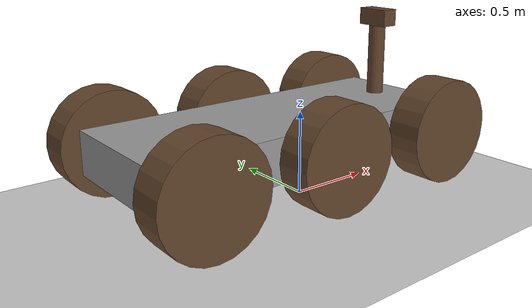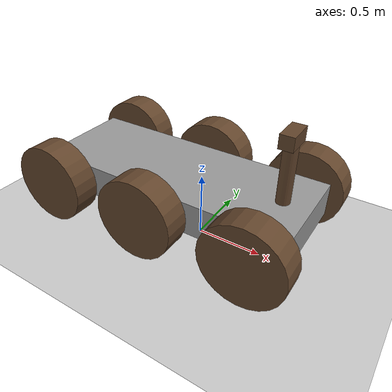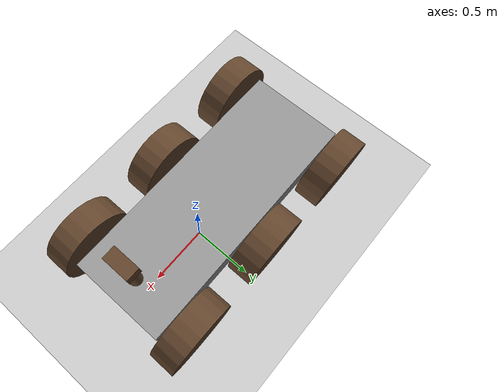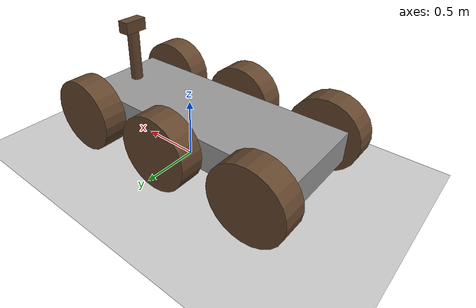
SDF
<sdf version="1.7">
  <world name="my_world">

    <gui fullscreen="0">  <!-- Ekranda nelerin gözükeçeğini ayarlar -->

      <!-- 3D scene -->
      <plugin filename="MinimalScene" name="3D View">
        <ignition-gui>
          <title>3D View</title>
          <property type="bool" key="showTitleBar">false</property>
          <property type="string" key="state">docked</property>
        </ignition-gui>

        <engine>ogre2</engine>
        <scene>scene</scene>
        <ambient_light>0.4 0.4 0.4</ambient_light>
        <background_color>0.8 0.8 0.8</background_color>
        <camera_pose>-6 0 6 0 0.5 0</camera_pose>
      </plugin>

      <!-- Plugins that add functionality to the scene -->
      <plugin filename="EntityContextMenuPlugin" name="Entity context menu">
        <ignition-gui>
          <property key="state" type="string">floating</property>
          <property key="width" type="double">5</property>
          <property key="height" type="double">5</property>
          <property key="showTitleBar" type="bool">false</property>
        </ignition-gui>
      </plugin>
      <plugin filename="GzSceneManager" name="Scene Manager">
        <ignition-gui>
          <property key="resizable" type="bool">false</property>
          <property key="width" type="double">5</property>
          <property key="height" type="double">5</property>
          <property key="state" type="string">floating</property>
          <property key="showTitleBar" type="bool">false</property>
        </ignition-gui>
      </plugin>
      <plugin filename="InteractiveViewControl" name="Interactive view control">
        <ignition-gui>
          <property key="resizable" type="bool">false</property>
          <property key="width" type="double">5</property>
          <property key="height" type="double">5</property>
          <property key="state" type="string">floating</property>
          <property key="showTitleBar" type="bool">false</property>
        </ignition-gui>
      </plugin>
      <plugin filename="CameraTracking" name="Camera Tracking">
        <ignition-gui>
          <property key="resizable" type="bool">false</property>
          <property key="width" type="double">5</property>
          <property key="height" type="double">5</property>
          <property key="state" type="string">floating</property>
          <property key="showTitleBar" type="bool">false</property>
        </ignition-gui>
      </plugin>
      <!-- World control -->
      <plugin filename="WorldControl" name="World control">
        <ignition-gui>
          <title>World control</title>
          <property type="bool" key="showTitleBar">false</property>
          <property type="bool" key="resizable">false</property>
          <property type="double" key="height">72</property>
          <property type="double" key="width">121</property>
          <property type="double" key="z">1</property>

          <property type="string" key="state">floating</property>
          <anchors target="3D View">
            <line own="left" target="left"/>
            <line own="bottom" target="bottom"/>
          </anchors>
        </ignition-gui>

        <play_pause>true</play_pause>
        <step>true</step>
        <start_paused>true</start_paused>
        <use_event>true</use_event>

      </plugin>

      <!-- World statistics -->
      <plugin filename="WorldStats" name="World stats">
        <ignition-gui>
          <title>World stats</title>
          <property type="bool" key="showTitleBar">false</property>
          <property type="bool" key="resizable">false</property>
          <property type="double" key="height">110</property>
          <property type="double" key="width">290</property>
          <property type="double" key="z">1</property>

          <property type="string" key="state">floating</property>
          <anchors target="3D View">
            <line own="right" target="right"/>
            <line own="bottom" target="bottom"/>
          </anchors>
        </ignition-gui>

        <sim_time>true</sim_time>
        <real_time>true</real_time>
        <real_time_factor>true</real_time_factor>
        <iterations>true</iterations>
      </plugin>

      <plugin filename="ImageDisplay" name="Image Display">
        <ignition-gui>
          <property key="state" type="string">docked</property>  <!-- docked yerine floating -->
        </ignition-gui>
      </plugin>

      <!-- Inspector -->

      <!-- Entity tree -->
    </gui>

  <plugin
    filename="ignition-gazebo-physics-system"
    name="ignition::gazebo::systems::Physics">
  </plugin>
  <plugin
    filename="ignition-gazebo-sensors-system"
    name="ignition::gazebo::systems::Sensors">
    <render_engine>ogre</render_engine>
  </plugin>
  <plugin
    filename="ignition-gazebo-user-commands-system"
    name="ignition::gazebo::systems::UserCommands">
  </plugin>
  <plugin
    filename="ignition-gazebo-scene-broadcaster-system"
    name="ignition::gazebo::systems::SceneBroadcaster">
  </plugin>

    <include>
      <uri> https://fuel.gazebosim.org/1.0/OpenRobotics/models/Sun </uri>
    </include>

    <include>
      <uri>../models/ground</uri>
      <!--
        Eğer model yolu IGN_GAZEBO_RESOURCE_PATH değişkenine bildirildi ise sadece ground
        yeterlidir.
       -->
    </include>

    <include>
      <pose>0 0 0.5 0 0 0</pose>
      <uri>../models/vehicle</uri>
    </include>

  </world>
</sdf>

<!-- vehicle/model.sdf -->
<sdf version='1.7'>
  <model name='land_vehicle'>
    <link name='vehicle_body_link'>
      <inertial>
        <mass>1</mass>
        <inertia>
          <ixx>0.166667</ixx>
          <ixy>0</ixy>
          <ixz>0</ixz>
          <iyy>0.166667</iyy>
          <iyz>0</iyz>
          <izz>0.166667</izz>
        </inertia>
        <pose>0 0 0 0 -0 0</pose>
      </inertial>
      <pose>-0.177778 0 -0.1 0 -0 0</pose>
      <gravity>1</gravity>
      <self_collide>0</self_collide>
      <kinematic>0</kinematic>
      <enable_wind>0</enable_wind>
      <visual name='visual'>
        <pose>0 0 0 0 -0 0</pose>
        <geometry>
          <box>
            <size>2 0.75 0.25</size>
          </box>
        </geometry>
        <material>
          <lighting>1</lighting>
          <script>
            <uri>file://media/materials/scripts/gazebo.material</uri>
            <name>Gazebo/Grey</name>
          </script>
          <shader type='pixel'>
            <normal_map>__default__</normal_map>
          </shader>
          <ambient>0 0 0 1</ambient>
          <diffuse>0 0 0 1</diffuse>
          <specular>0 0 0 1</specular>
          <emissive>0 0 0 1</emissive>
        </material>
        <transparency>0</transparency>
        <cast_shadows>1</cast_shadows>
      </visual>
      <collision name='collision'>
        <laser_retro>0</laser_retro>
        <max_contacts>10</max_contacts>
        <pose>0 0 0 0 -0 0</pose>
        <geometry>
          <box>
            <size>2 0.75 0.25</size>
          </box>
        </geometry>
        <surface>
          <friction>
            <ode>
              <mu>1</mu>
              <mu2>1</mu2>
              <fdir1>0 0 0</fdir1>
              <slip1>0</slip1>
              <slip2>0</slip2>
            </ode>
            <torsional>
              <coefficient>1</coefficient>
              <patch_radius>0</patch_radius>
              <surface_radius>0</surface_radius>
              <use_patch_radius>1</use_patch_radius>
              <ode>
                <slip>0</slip>
              </ode>
            </torsional>
          </friction>
          <bounce>
            <restitution_coefficient>0</restitution_coefficient>
            <threshold>1e+06</threshold>
          </bounce>
          <contact>
            <collide_without_contact>0</collide_without_contact>
            <collide_without_contact_bitmask>1</collide_without_contact_bitmask>
            <collide_bitmask>1</collide_bitmask>
            <ode>
              <soft_cfm>0</soft_cfm>
              <soft_erp>0.2</soft_erp>
              <kp>1e+13</kp>
              <kd>1</kd>
              <max_vel>0.01</max_vel>
              <min_depth>0</min_depth>
            </ode>
            <bullet>
              <split_impulse>1</split_impulse>
              <split_impulse_penetration_threshold>-0.01</split_impulse_penetration_threshold>
              <soft_cfm>0</soft_cfm>
              <soft_erp>0.2</soft_erp>
              <kp>1e+13</kp>
              <kd>1</kd>
            </bullet>
          </contact>
        </surface>
      </collision>
    </link>
    <link name='BR_wheel_link'>
      <inertial>
        <mass>1</mass>
        <inertia>
          <ixx>0.145833</ixx>
          <ixy>0</ixy>
          <ixz>0</ixz>
          <iyy>0.145833</iyy>
          <iyz>0</iyz>
          <izz>0.125</izz>
        </inertia>
        <pose>0 0 0 0 -0 0</pose>
      </inertial>
      <pose>-0.977778 -0.5 -0.1 0 -0 0</pose>
      <gravity>1</gravity>
      <self_collide>0</self_collide>
      <kinematic>0</kinematic>
      <enable_wind>0</enable_wind>
      <visual name='visual'>
        <pose>0 0 0 1.5707 -0 0</pose>
        <geometry>
          <cylinder>
            <radius>0.3</radius>
            <length>0.2</length>
          </cylinder>
        </geometry>
        <material>
          <lighting>1</lighting>
          <script>
            <uri>file://media/materials/scripts/gazebo.material</uri>
            <name>Gazebo/Grey</name>
          </script>
          <shader type='pixel'>
            <normal_map>__default__</normal_map>
          </shader>
          <ambient>0.388 0.271 0.173 1</ambient>
          <diffuse>0.388 0.271 0.173 1</diffuse>
          <specular>0 0 0 1</specular>
          <emissive>0 0 0 1</emissive>
        </material>
        <transparency>0</transparency>
        <cast_shadows>1</cast_shadows>
      </visual>
      <collision name='collision'>
        <laser_retro>0</laser_retro>
        <max_contacts>10</max_contacts>
        <pose>0 0 0 1.5707 -0 0</pose>
        <geometry>
          <cylinder>
            <radius>0.3</radius>
            <length>0.2</length>
          </cylinder>
        </geometry>
        <surface>
          <friction>
            <ode>
              <mu>0.1</mu>
              <mu2>0.1</mu2>
              <fdir1>0 0 0</fdir1>
              <slip1>0</slip1>
              <slip2>0</slip2>
            </ode>
            <torsional>
              <coefficient>1</coefficient>
              <patch_radius>0</patch_radius>
              <surface_radius>0</surface_radius>
              <use_patch_radius>1</use_patch_radius>
              <ode>
                <slip>0</slip>
              </ode>
            </torsional>
          </friction>
          <bounce>
            <restitution_coefficient>0</restitution_coefficient>
            <threshold>1e+06</threshold>
          </bounce>
          <contact>
            <collide_without_contact>0</collide_without_contact>
            <collide_without_contact_bitmask>1</collide_without_contact_bitmask>
            <collide_bitmask>1</collide_bitmask>
            <ode>
              <soft_cfm>0</soft_cfm>
              <soft_erp>0.2</soft_erp>
              <kp>1e+13</kp>
              <kd>1</kd>
              <max_vel>0.01</max_vel>
              <min_depth>0</min_depth>
            </ode>
            <bullet>
              <split_impulse>1</split_impulse>
              <split_impulse_penetration_threshold>-0.01</split_impulse_penetration_threshold>
              <soft_cfm>0</soft_cfm>
              <soft_erp>0.2</soft_erp>
              <kp>1e+13</kp>
              <kd>1</kd>
            </bullet>
          </contact>
        </surface>
      </collision>
    </link>
    <link name='FL_wheel_link'>
      <inertial>
        <mass>1</mass>
        <inertia>
          <ixx>0.145833</ixx>
          <ixy>0</ixy>
          <ixz>0</ixz>
          <iyy>0.145833</iyy>
          <iyz>0</iyz>
          <izz>0.125</izz>
        </inertia>
        <pose>0 0 0 0 -0 0</pose>
      </inertial>
      <pose>0.622222 0.5 -0.1 0 -0 0</pose>
      <gravity>1</gravity>
      <self_collide>0</self_collide>
      <kinematic>0</kinematic>
      <enable_wind>0</enable_wind>
      <visual name='visual'>
        <pose>0 0 0 1.5707 -0 0</pose>
        <geometry>
          <cylinder>
            <radius>0.3</radius>
            <length>0.2</length>
          </cylinder>
        </geometry>
        <material>
          <lighting>1</lighting>
          <script>
            <uri>file://media/materials/scripts/gazebo.material</uri>
            <name>Gazebo/Grey</name>
          </script>
          <shader type='pixel'>
            <normal_map>__default__</normal_map>
          </shader>
          <ambient>0.388 0.271 0.173 1</ambient>
          <diffuse>0.388 0.271 0.173 1</diffuse>
          <specular>0 0 0 1</specular>
          <emissive>0 0 0 1</emissive>
        </material>
        <transparency>0</transparency>
        <cast_shadows>1</cast_shadows>
      </visual>
      <collision name='collision'>
        <laser_retro>0</laser_retro>
        <max_contacts>10</max_contacts>
        <pose>0 0 0 1.5707 -0 0</pose>
        <geometry>
          <cylinder>
            <radius>0.3</radius>
            <length>0.2</length>
          </cylinder>
        </geometry>
        <surface>
          <friction>
            <ode>
              <mu>0.1</mu>
              <mu2>0.1</mu2>
              <fdir1>0 0 0</fdir1>
              <slip1>0</slip1>
              <slip2>0</slip2>
            </ode>
            <torsional>
              <coefficient>1</coefficient>
              <patch_radius>0</patch_radius>
              <surface_radius>0</surface_radius>
              <use_patch_radius>1</use_patch_radius>
              <ode>
                <slip>0</slip>
              </ode>
            </torsional>
          </friction>
          <bounce>
            <restitution_coefficient>0</restitution_coefficient>
            <threshold>1e+06</threshold>
          </bounce>
          <contact>
            <collide_without_contact>0</collide_without_contact>
            <collide_without_contact_bitmask>1</collide_without_contact_bitmask>
            <collide_bitmask>1</collide_bitmask>
            <ode>
              <soft_cfm>0</soft_cfm>
              <soft_erp>0.2</soft_erp>
              <kp>1e+13</kp>
              <kd>1</kd>
              <max_vel>0.01</max_vel>
              <min_depth>0</min_depth>
            </ode>
            <bullet>
              <split_impulse>1</split_impulse>
              <split_impulse_penetration_threshold>-0.01</split_impulse_penetration_threshold>
              <soft_cfm>0</soft_cfm>
              <soft_erp>0.2</soft_erp>
              <kp>1e+13</kp>
              <kd>1</kd>
            </bullet>
          </contact>
        </surface>
      </collision>
    </link>
    <link name='CL_wheel_link'>
      <inertial>
        <mass>1</mass>
        <inertia>
          <ixx>0.145833</ixx>
          <ixy>0</ixy>
          <ixz>0</ixz>
          <iyy>0.145833</iyy>
          <iyz>0</iyz>
          <izz>0.125</izz>
        </inertia>
        <pose>0 0 0 0 -0 0</pose>
      </inertial>
      <pose>-0.177778 0.5 -0.1 0 -0 0</pose>
      <gravity>1</gravity>
      <self_collide>0</self_collide>
      <kinematic>0</kinematic>
      <enable_wind>0</enable_wind>
      <visual name='visual'>
        <pose>0 0 0 1.5707 -0 0</pose>
        <geometry>
          <cylinder>
            <radius>0.3</radius>
            <length>0.2</length>
          </cylinder>
        </geometry>
        <material>
          <lighting>1</lighting>
          <script>
            <uri>file://media/materials/scripts/gazebo.material</uri>
            <name>Gazebo/Grey</name>
          </script>
          <shader type='pixel'>
            <normal_map>__default__</normal_map>
          </shader>
          <ambient>0.388 0.271 0.173 1</ambient>
          <diffuse>0.388 0.271 0.173 1</diffuse>
          <specular>0 0 0 1</specular>
          <emissive>0 0 0 1</emissive>
        </material>
        <transparency>0</transparency>
        <cast_shadows>1</cast_shadows>
      </visual>
      <collision name='collision'>
        <laser_retro>0</laser_retro>
        <max_contacts>10</max_contacts>
        <pose>0 0 0 1.5707 -0 0</pose>
        <geometry>
          <cylinder>
            <radius>0.3</radius>
            <length>0.2</length>
          </cylinder>
        </geometry>
        <surface>
          <friction>
            <ode>
              <mu>0.1</mu>
              <mu2>0.1</mu2>
              <fdir1>0 0 0</fdir1>
              <slip1>0</slip1>
              <slip2>0</slip2>
            </ode>
            <torsional>
              <coefficient>1</coefficient>
              <patch_radius>0</patch_radius>
              <surface_radius>0</surface_radius>
              <use_patch_radius>1</use_patch_radius>
              <ode>
                <slip>0</slip>
              </ode>
            </torsional>
          </friction>
          <bounce>
            <restitution_coefficient>0</restitution_coefficient>
            <threshold>1e+06</threshold>
          </bounce>
          <contact>
            <collide_without_contact>0</collide_without_contact>
            <collide_without_contact_bitmask>1</collide_without_contact_bitmask>
            <collide_bitmask>1</collide_bitmask>
            <ode>
              <soft_cfm>0</soft_cfm>
              <soft_erp>0.2</soft_erp>
              <kp>1e+13</kp>
              <kd>1</kd>
              <max_vel>0.01</max_vel>
              <min_depth>0</min_depth>
            </ode>
            <bullet>
              <split_impulse>1</split_impulse>
              <split_impulse_penetration_threshold>-0.01</split_impulse_penetration_threshold>
              <soft_cfm>0</soft_cfm>
              <soft_erp>0.2</soft_erp>
              <kp>1e+13</kp>
              <kd>1</kd>
            </bullet>
          </contact>
        </surface>
      </collision>
    </link>
    <link name='CR_wheel_link'>
      <inertial>
        <mass>1</mass>
        <inertia>
          <ixx>0.145833</ixx>
          <ixy>0</ixy>
          <ixz>0</ixz>
          <iyy>0.145833</iyy>
          <iyz>0</iyz>
          <izz>0.125</izz>
        </inertia>
        <pose>0 0 0 0 -0 0</pose>
      </inertial>
      <pose>-0.177778 -0.5 -0.1 0 -0 0</pose>
      <gravity>1</gravity>
      <self_collide>0</self_collide>
      <kinematic>0</kinematic>
      <enable_wind>0</enable_wind>
      <visual name='visual'>
        <pose>0 0 0 1.5707 -0 0</pose>
        <geometry>
          <cylinder>
            <radius>0.3</radius>
            <length>0.2</length>
          </cylinder>
        </geometry>
        <material>
          <lighting>1</lighting>
          <script>
            <uri>file://media/materials/scripts/gazebo.material</uri>
            <name>Gazebo/Grey</name>
          </script>
          <shader type='pixel'>
            <normal_map>__default__</normal_map>
          </shader>
          <ambient>0.388 0.271 0.173 1</ambient>
          <diffuse>0.388 0.271 0.173 1</diffuse>
          <specular>0 0 0 1</specular>
          <emissive>0 0 0 1</emissive>
        </material>
        <transparency>0</transparency>
        <cast_shadows>1</cast_shadows>
      </visual>
      <collision name='collision'>
        <laser_retro>0</laser_retro>
        <max_contacts>10</max_contacts>
        <pose>0 0 0 1.5707 -0 0</pose>
        <geometry>
          <cylinder>
            <radius>0.3</radius>
            <length>0.2</length>
          </cylinder>
        </geometry>
        <surface>
          <friction>
            <ode>
              <mu>0.1</mu>
              <mu2>0.1</mu2>
              <fdir1>0 0 0</fdir1>
              <slip1>0</slip1>
              <slip2>0</slip2>
            </ode>
            <torsional>
              <coefficient>1</coefficient>
              <patch_radius>0</patch_radius>
              <surface_radius>0</surface_radius>
              <use_patch_radius>1</use_patch_radius>
              <ode>
                <slip>0</slip>
              </ode>
            </torsional>
          </friction>
          <bounce>
            <restitution_coefficient>0</restitution_coefficient>
            <threshold>1e+06</threshold>
          </bounce>
          <contact>
            <collide_without_contact>0</collide_without_contact>
            <collide_without_contact_bitmask>1</collide_without_contact_bitmask>
            <collide_bitmask>1</collide_bitmask>
            <ode>
              <soft_cfm>0</soft_cfm>
              <soft_erp>0.2</soft_erp>
              <kp>1e+13</kp>
              <kd>1</kd>
              <max_vel>0.01</max_vel>
              <min_depth>0</min_depth>
            </ode>
            <bullet>
              <split_impulse>1</split_impulse>
              <split_impulse_penetration_threshold>-0.01</split_impulse_penetration_threshold>
              <soft_cfm>0</soft_cfm>
              <soft_erp>0.2</soft_erp>
              <kp>1e+13</kp>
              <kd>1</kd>
            </bullet>
          </contact>
        </surface>
      </collision>
    </link>
    <link name='BL_wheel_link'>
      <inertial>
        <mass>1</mass>
        <inertia>
          <ixx>0.145833</ixx>
          <ixy>0</ixy>
          <ixz>0</ixz>
          <iyy>0.145833</iyy>
          <iyz>0</iyz>
          <izz>0.125</izz>
        </inertia>
        <pose>0 0 0 0 -0 0</pose>
      </inertial>
      <pose>-0.977778 0.5 -0.1 0 -0 0</pose>
      <gravity>1</gravity>
      <self_collide>0</self_collide>
      <kinematic>0</kinematic>
      <enable_wind>0</enable_wind>
      <visual name='visual'>
        <pose>0 0 0 1.5707 -0 0</pose>
        <geometry>
          <cylinder>
            <radius>0.3</radius>
            <length>0.2</length>
          </cylinder>
        </geometry>
        <material>
          <lighting>1</lighting>
          <script>
            <uri>file://media/materials/scripts/gazebo.material</uri>
            <name>Gazebo/Grey</name>
          </script>
          <shader type='pixel'>
            <normal_map>__default__</normal_map>
          </shader>
          <ambient>0.388 0.271 0.173 1</ambient>
          <diffuse>0.388 0.271 0.173 1</diffuse>
          <specular>0 0 0 1</specular>
          <emissive>0 0 0 1</emissive>
        </material>
        <transparency>0</transparency>
        <cast_shadows>1</cast_shadows>
      </visual>
      <collision name='collision'>
        <laser_retro>0</laser_retro>
        <max_contacts>10</max_contacts>
        <pose>0 0 0 1.5707 -0 0</pose>
        <geometry>
          <cylinder>
            <radius>0.3</radius>
            <length>0.2</length>
          </cylinder>
        </geometry>
        <surface>
          <friction>
            <ode>
              <mu>0.1</mu>
              <mu2>0.1</mu2>
              <fdir1>0 0 0</fdir1>
              <slip1>0</slip1>
              <slip2>0</slip2>
            </ode>
            <torsional>
              <coefficient>1</coefficient>
              <patch_radius>0</patch_radius>
              <surface_radius>0</surface_radius>
              <use_patch_radius>1</use_patch_radius>
              <ode>
                <slip>0</slip>
              </ode>
            </torsional>
          </friction>
          <bounce>
            <restitution_coefficient>0</restitution_coefficient>
            <threshold>1e+06</threshold>
          </bounce>
          <contact>
            <collide_without_contact>0</collide_without_contact>
            <collide_without_contact_bitmask>1</collide_without_contact_bitmask>
            <collide_bitmask>1</collide_bitmask>
            <ode>
              <soft_cfm>0</soft_cfm>
              <soft_erp>0.2</soft_erp>
              <kp>1e+13</kp>
              <kd>1</kd>
              <max_vel>0.01</max_vel>
              <min_depth>0</min_depth>
            </ode>
            <bullet>
              <split_impulse>1</split_impulse>
              <split_impulse_penetration_threshold>-0.01</split_impulse_penetration_threshold>
              <soft_cfm>0</soft_cfm>
              <soft_erp>0.2</soft_erp>
              <kp>1e+13</kp>
              <kd>1</kd>
            </bullet>
          </contact>
        </surface>
      </collision>
    </link>
    <link name='FR_wheel_link'>
      <inertial>
        <mass>1</mass>
        <inertia>
          <ixx>0.145833</ixx>
          <ixy>0</ixy>
          <ixz>0</ixz>
          <iyy>0.145833</iyy>
          <iyz>0</iyz>
          <izz>0.125</izz>
        </inertia>
        <pose>0 0 0 0 -0 0</pose>
      </inertial>
      <pose>0.622222 -0.5 -0.1 0 -0 0</pose>
      <gravity>1</gravity>
      <self_collide>0</self_collide>
      <kinematic>0</kinematic>
      <enable_wind>0</enable_wind>
      <visual name='visual'>
        <pose>0 0 0 1.5707 -0 0</pose>
        <geometry>
          <cylinder>
            <radius>0.3</radius>
            <length>0.2</length>
          </cylinder>
        </geometry>
        <material>
          <lighting>1</lighting>
          <script>
            <uri>file://media/materials/scripts/gazebo.material</uri>
            <name>Gazebo/Grey</name>
          </script>
          <shader type='pixel'>
            <normal_map>__default__</normal_map>
          </shader>
          <ambient>0.388 0.271 0.173 1</ambient>
          <diffuse>0.388 0.271 0.173 1</diffuse>
          <specular>0 0 0 1</specular>
          <emissive>0 0 0 1</emissive>
        </material>
        <transparency>0</transparency>
        <cast_shadows>1</cast_shadows>
      </visual>
      <collision name='collision'>
        <laser_retro>0</laser_retro>
        <max_contacts>10</max_contacts>
        <pose>0 0 0 1.5707 -0 0</pose>
        <geometry>
          <cylinder>
            <radius>0.3</radius>
            <length>0.2</length>
          </cylinder>
        </geometry>
        <surface>
          <friction>
            <ode>
              <mu>0.1</mu>
              <mu2>0.1</mu2>
              <fdir1>0 0 0</fdir1>
              <slip1>0</slip1>
              <slip2>0</slip2>
            </ode>
            <torsional>
              <coefficient>1</coefficient>
              <patch_radius>0</patch_radius>
              <surface_radius>0</surface_radius>
              <use_patch_radius>1</use_patch_radius>
              <ode>
                <slip>0</slip>
              </ode>
            </torsional>
          </friction>
          <bounce>
            <restitution_coefficient>0</restitution_coefficient>
            <threshold>1e+06</threshold>
          </bounce>
          <contact>
            <collide_without_contact>0</collide_without_contact>
            <collide_without_contact_bitmask>1</collide_without_contact_bitmask>
            <collide_bitmask>1</collide_bitmask>
            <ode>
              <soft_cfm>0</soft_cfm>
              <soft_erp>0.2</soft_erp>
              <kp>1e+13</kp>
              <kd>1</kd>
              <max_vel>0.01</max_vel>
              <min_depth>0</min_depth>
            </ode>
            <bullet>
              <split_impulse>1</split_impulse>
              <split_impulse_penetration_threshold>-0.01</split_impulse_penetration_threshold>
              <soft_cfm>0</soft_cfm>
              <soft_erp>0.2</soft_erp>
              <kp>1e+13</kp>
              <kd>1</kd>
            </bullet>
          </contact>
        </surface>
      </collision>
    </link>
    <link name='camera_holder_link'>
      <inertial>
        <mass>1</mass>
        <inertia>
          <ixx>0.145833</ixx>
          <ixy>0</ixy>
          <ixz>0</ixz>
          <iyy>0.145833</iyy>
          <iyz>0</iyz>
          <izz>0.125</izz>
        </inertia>
        <pose>0 0 0 0 -0 0</pose>
      </inertial>
      <pose>0.622222 0 0.2 0 -0 0</pose>
      <gravity>1</gravity>
      <self_collide>0</self_collide>
      <kinematic>0</kinematic>
      <enable_wind>0</enable_wind>
      <visual name='visual'>
        <pose>0 0 0 0 -0 0</pose>
        <geometry>
          <cylinder>
            <radius>0.05</radius>
            <length>0.5</length>
          </cylinder>
        </geometry>
        <material>
          <lighting>1</lighting>
          <script>
            <uri>file://media/materials/scripts/gazebo.material</uri>
            <name>Gazebo/Grey</name>
          </script>
          <shader type='pixel'>
            <normal_map>__default__</normal_map>
          </shader>
          <ambient>0.388 0.271 0.173 1</ambient>
          <diffuse>0.388 0.271 0.173 1</diffuse>
          <specular>0 0 0 1</specular>
          <emissive>0 0 0 1</emissive>
        </material>
        <transparency>0</transparency>
        <cast_shadows>1</cast_shadows>
      </visual>
      <collision name='collision'>
        <laser_retro>0</laser_retro>
        <max_contacts>10</max_contacts>
        <pose>0 0 0 0 -0 0</pose>
        <geometry>
          <cylinder>
            <radius>0.05</radius>
            <length>0.5</length>
          </cylinder>
        </geometry>
        <surface>
          <friction>
            <ode>
              <mu>1</mu>
              <mu2>1</mu2>
              <fdir1>0 0 0</fdir1>
              <slip1>0</slip1>
              <slip2>0</slip2>
            </ode>
            <torsional>
              <coefficient>1</coefficient>
              <patch_radius>0</patch_radius>
              <surface_radius>0</surface_radius>
              <use_patch_radius>1</use_patch_radius>
              <ode>
                <slip>0</slip>
              </ode>
            </torsional>
          </friction>
          <bounce>
            <restitution_coefficient>0</restitution_coefficient>
            <threshold>1e+06</threshold>
          </bounce>
          <contact>
            <collide_without_contact>0</collide_without_contact>
            <collide_without_contact_bitmask>1</collide_without_contact_bitmask>
            <collide_bitmask>1</collide_bitmask>
            <ode>
              <soft_cfm>0</soft_cfm>
              <soft_erp>0.2</soft_erp>
              <kp>1e+13</kp>
              <kd>1</kd>
              <max_vel>0.01</max_vel>
              <min_depth>0</min_depth>
            </ode>
            <bullet>
              <split_impulse>1</split_impulse>
              <split_impulse_penetration_threshold>-0.01</split_impulse_penetration_threshold>
              <soft_cfm>0</soft_cfm>
              <soft_erp>0.2</soft_erp>
              <kp>1e+13</kp>
              <kd>1</kd>
            </bullet>
          </contact>
        </surface>
      </collision>
    </link>
    <link name='camera_link'>
      <inertial>
        <mass>1</mass>
        <inertia>
          <ixx>0.166667</ixx>
          <ixy>0</ixy>
          <ixz>0</ixz>
          <iyy>0.166667</iyy>
          <iyz>0</iyz>
          <izz>0.166667</izz>
        </inertia>
        <pose>0 0 0 0 -0 0</pose>
      </inertial>
      <pose>0.622222 0 0.5 0 -0 0</pose>
      <gravity>1</gravity>
      <self_collide>0</self_collide>
      <kinematic>0</kinematic>
      <enable_wind>0</enable_wind>
      <visual name='visual'>
        <pose>0 0 0 0 -0 0</pose>
        <geometry>
          <box>
            <size>0.1 0.2 0.1</size>
          </box>
        </geometry>
        <material>
          <lighting>1</lighting>
          <script>
            <uri>file://media/materials/scripts/gazebo.material</uri>
            <name>Gazebo/Grey</name>
          </script>
          <shader type='pixel'>
            <normal_map>__default__</normal_map>
          </shader>
          <ambient>0.388 0.271 0.173 1</ambient>
          <diffuse>0.388 0.271 0.173 1</diffuse>
          <specular>0.01 0.01 0.01 1</specular>
          <emissive>0 0 0 1</emissive>
        </material>
        <transparency>0</transparency>
        <cast_shadows>1</cast_shadows>
      </visual>
      <collision name='collision'>
        <laser_retro>0</laser_retro>
        <max_contacts>10</max_contacts>
        <pose>0 0 0 0 -0 0</pose>
        <geometry>
          <box>
            <size>0.1 0.2 0.1</size>
          </box>
        </geometry>
        <surface>
          <friction>
            <ode>
              <mu>1</mu>
              <mu2>1</mu2>
              <fdir1>0 0 0</fdir1>
              <slip1>0</slip1>
              <slip2>0</slip2>
            </ode>
            <torsional>
              <coefficient>1</coefficient>
              <patch_radius>0</patch_radius>
              <surface_radius>0</surface_radius>
              <use_patch_radius>1</use_patch_radius>
              <ode>
                <slip>0</slip>
              </ode>
            </torsional>
          </friction>
          <bounce>
            <restitution_coefficient>0</restitution_coefficient>
            <threshold>1e+06</threshold>
          </bounce>
          <contact>
            <collide_without_contact>0</collide_without_contact>
            <collide_without_contact_bitmask>1</collide_without_contact_bitmask>
            <collide_bitmask>1</collide_bitmask>
            <ode>
              <soft_cfm>0</soft_cfm>
              <soft_erp>0.2</soft_erp>
              <kp>1e+13</kp>
              <kd>1</kd>
              <max_vel>0.01</max_vel>
              <min_depth>0</min_depth>
            </ode>
            <bullet>
              <split_impulse>1</split_impulse>
              <split_impulse_penetration_threshold>-0.01</split_impulse_penetration_threshold>
              <soft_cfm>0</soft_cfm>
              <soft_erp>0.2</soft_erp>
              <kp>1e+13</kp>
              <kd>1</kd>
            </bullet>
          </contact>
        </surface>
      </collision>
      <sensor name="camera" type="camera">
          <camera>
            <horizontal_fov>1.047</horizontal_fov>
            <image>
              <width>320</width>
              <height>240</height>
            </image>
            <clip>
              <near>0.1</near>
              <far>100</far>
            </clip>
          </camera>
          <always_on>1</always_on>
          <update_rate>30</update_rate>
          <visualize>true</visualize>
          <topic>camera</topic>
        </sensor>
    </link>
    <joint name='vehicle_body_link_JOINT_10' type='revolute'>
      <parent>vehicle_body_link</parent>
      <child>BR_wheel_link</child>
      <pose>0 0 0 0 -0 0</pose>
      <axis>
        <xyz>0 1 0</xyz>
        <limit>
          <lower>-1.79769e+308</lower>
          <upper>1.79769e+308</upper>
          <effort>-1</effort>
          <velocity>-1</velocity>
        </limit>
        <dynamics>
          <spring_reference>0</spring_reference>
          <spring_stiffness>0</spring_stiffness>
          <damping>0</damping>
        </dynamics>
      </axis>
      <physics>
        <ode>
          <limit>
            <cfm>0</cfm>
            <erp>0.2</erp>
          </limit>
          <suspension>
            <cfm>0</cfm>
            <erp>0.2</erp>
          </suspension>
        </ode>
      </physics>
    </joint>
    <joint name='vehicle_body_link_JOINT_11' type='revolute'>
      <parent>vehicle_body_link</parent>
      <child>camera_holder_link</child>
      <pose>0 0 0 0 -0 0</pose>
      <axis>
        <xyz>0 0 1</xyz>
        <limit>
          <lower>-1.79769e+308</lower>
          <upper>1.79769e+308</upper>
          <effort>-1</effort>
          <velocity>-1</velocity>
        </limit>
        <dynamics>
          <spring_reference>0</spring_reference>
          <spring_stiffness>0</spring_stiffness>
          <damping>0</damping>
        </dynamics>
      </axis>
      <physics>
        <ode>
          <limit>
            <cfm>0</cfm>
            <erp>0.2</erp>
          </limit>
          <suspension>
            <cfm>0</cfm>
            <erp>0.2</erp>
          </suspension>
        </ode>
      </physics>
    </joint>
    <joint name='FR_wheel_joint' type='revolute'>
      <parent>vehicle_body_link</parent>
      <child>FR_wheel_link</child>
      <pose>0 0 0 0 -0 0</pose>
      <axis>
        <xyz>0 1 0</xyz>
        <limit>
          <lower>-1.79769e+308</lower>
          <upper>1.79769e+308</upper>
          <effort>-1</effort>
          <velocity>-1</velocity>
        </limit>
        <dynamics>
          <spring_reference>0</spring_reference>
          <spring_stiffness>0</spring_stiffness>
          <damping>0</damping>
        </dynamics>
      </axis>
      <physics>
        <ode>
          <limit>
            <cfm>0</cfm>
            <erp>0.2</erp>
          </limit>
          <suspension>
            <cfm>0</cfm>
            <erp>0.2</erp>
          </suspension>
        </ode>
      </physics>
    </joint>
    <joint name='FL_wheel_joint' type='revolute'>
      <parent>vehicle_body_link</parent>
      <child>FL_wheel_link</child>
      <pose>0 0 0 0 -0 0</pose>
      <axis>
        <xyz>0 1 0</xyz>
        <limit>
          <lower>-1.79769e+308</lower>
          <upper>1.79769e+308</upper>
          <effort>-1</effort>
          <velocity>-1</velocity>
        </limit>
        <dynamics>
          <spring_reference>0</spring_reference>
          <spring_stiffness>0</spring_stiffness>
          <damping>0</damping>
        </dynamics>
      </axis>
      <physics>
        <ode>
          <limit>
            <cfm>0</cfm>
            <erp>0.2</erp>
          </limit>
          <suspension>
            <cfm>0</cfm>
            <erp>0.2</erp>
          </suspension>
        </ode>
      </physics>
    </joint>
    <joint name='vehicle_body_link_JOINT_7' type='revolute'>
      <parent>vehicle_body_link</parent>
      <child>CR_wheel_link</child>
      <pose>0 0 0 0 -0 0</pose>
      <axis>
        <xyz>0 1 0</xyz>
        <limit>
          <lower>-1.79769e+308</lower>
          <upper>1.79769e+308</upper>
          <effort>-1</effort>
          <velocity>-1</velocity>
        </limit>
        <dynamics>
          <spring_reference>0</spring_reference>
          <spring_stiffness>0</spring_stiffness>
          <damping>0</damping>
        </dynamics>
      </axis>
      <physics>
        <ode>
          <limit>
            <cfm>0</cfm>
            <erp>0.2</erp>
          </limit>
          <suspension>
            <cfm>0</cfm>
            <erp>0.2</erp>
          </suspension>
        </ode>
      </physics>
    </joint>
    <joint name='vehicle_body_link_JOINT_8' type='revolute'>
      <parent>vehicle_body_link</parent>
      <child>CL_wheel_link</child>
      <pose>0 0 0 0 -0 0</pose>
      <axis>
        <xyz>0 1 0</xyz>
        <limit>
          <lower>-1.79769e+308</lower>
          <upper>1.79769e+308</upper>
          <effort>-1</effort>
          <velocity>-1</velocity>
        </limit>
        <dynamics>
          <spring_reference>0</spring_reference>
          <spring_stiffness>0</spring_stiffness>
          <damping>0</damping>
        </dynamics>
      </axis>
      <physics>
        <ode>
          <limit>
            <cfm>0</cfm>
            <erp>0.2</erp>
          </limit>
          <suspension>
            <cfm>0</cfm>
            <erp>0.2</erp>
          </suspension>
        </ode>
      </physics>
    </joint>
    <joint name='vehicle_body_link_JOINT_9' type='revolute'>
      <parent>vehicle_body_link</parent>
      <child>BL_wheel_link</child>
      <pose>0 0 0 0 -0 0</pose>
      <axis>
        <xyz>0 1 0</xyz>
        <limit>
          <lower>-1.79769e+308</lower>
          <upper>1.79769e+308</upper>
          <effort>-1</effort>
          <velocity>-1</velocity>
        </limit>
        <dynamics>
          <spring_reference>0</spring_reference>
          <spring_stiffness>0</spring_stiffness>
          <damping>0</damping>
        </dynamics>
      </axis>
      <physics>
        <ode>
          <limit>
            <cfm>0</cfm>
            <erp>0.2</erp>
          </limit>
          <suspension>
            <cfm>0</cfm>
            <erp>0.2</erp>
          </suspension>
        </ode>
      </physics>
    </joint>
    <joint name='camera_holder_link_JOINT_12' type='fixed'>
      <parent>camera_holder_link</parent>
      <child>camera_link</child>
      <pose>0 0 0 0 -0 0</pose>
      <physics>
        <ode>
          <limit>
            <cfm>0</cfm>
            <erp>0.2</erp>
          </limit>
          <suspension>
            <cfm>0</cfm>
            <erp>0.2</erp>
          </suspension>
        </ode>
      </physics>
    </joint>
    <static>0</static>
    <allow_auto_disable>1</allow_auto_disable>
    <plugin
        filename="ignition-gazebo-diff-drive-system"
        name="ignition::gazebo::systems::DiffDrive">
        <left_joint>FL_wheel_joint</left_joint>
        <right_joint>FR_wheel_joint</right_joint>
        <wheel_separation>0.75</wheel_separation>
        <wheel_radius>0.3</wheel_radius>
        <max_linear_acceleration>1</max_linear_acceleration>
        <min_linear_acceleration>-1</min_linear_acceleration>
        <max_angular_acceleration>2</max_angular_acceleration>
        <min_angular_acceleration>-2</min_angular_acceleration>
        <max_linear_velocity>0.5</max_linear_velocity>
        <min_linear_velocity>-0.5</min_linear_velocity>
        <max_angular_velocity>1</max_angular_velocity>
        <min_angular_velocity>-1</min_angular_velocity>
      </plugin>
  </model>
</sdf>
